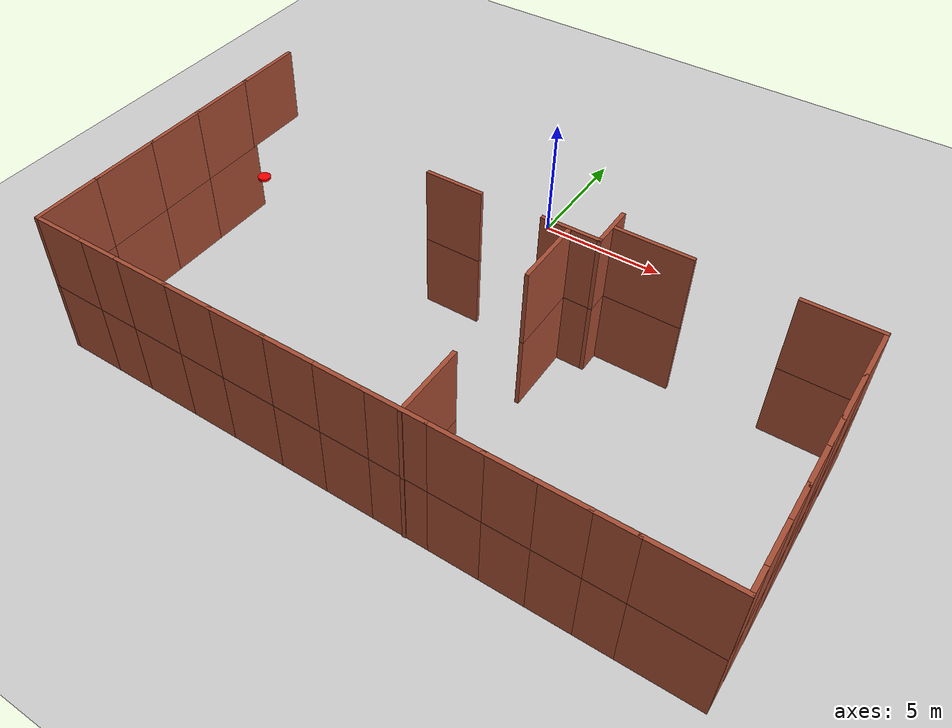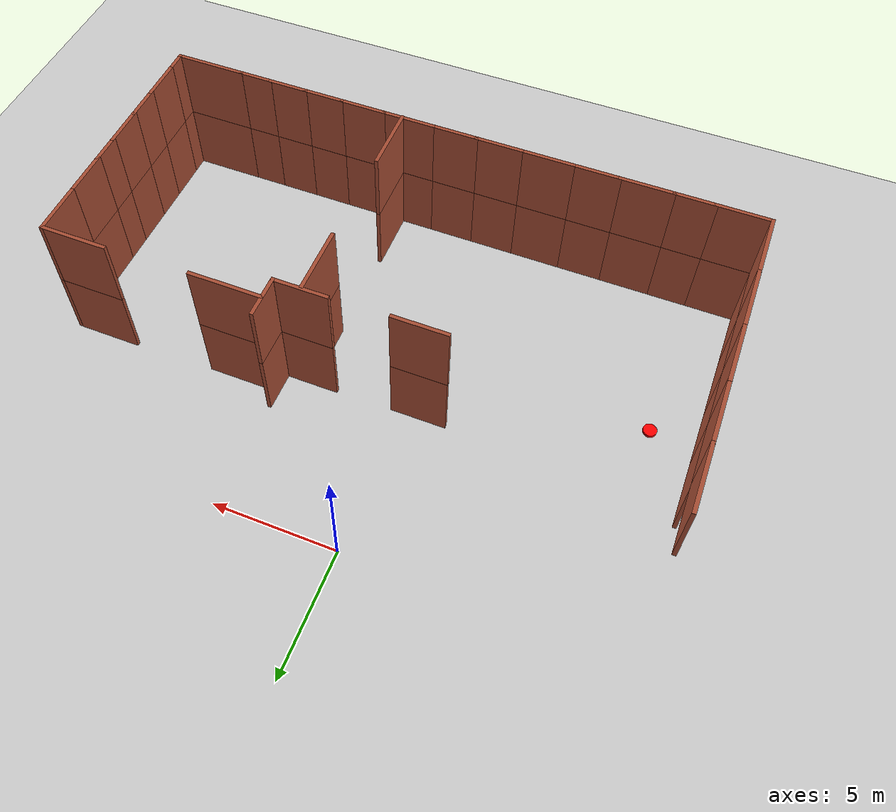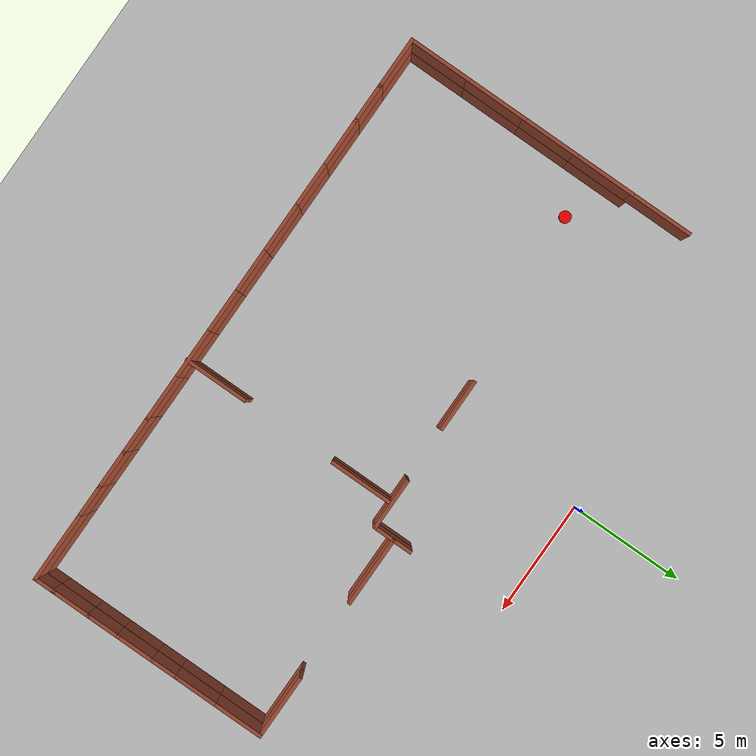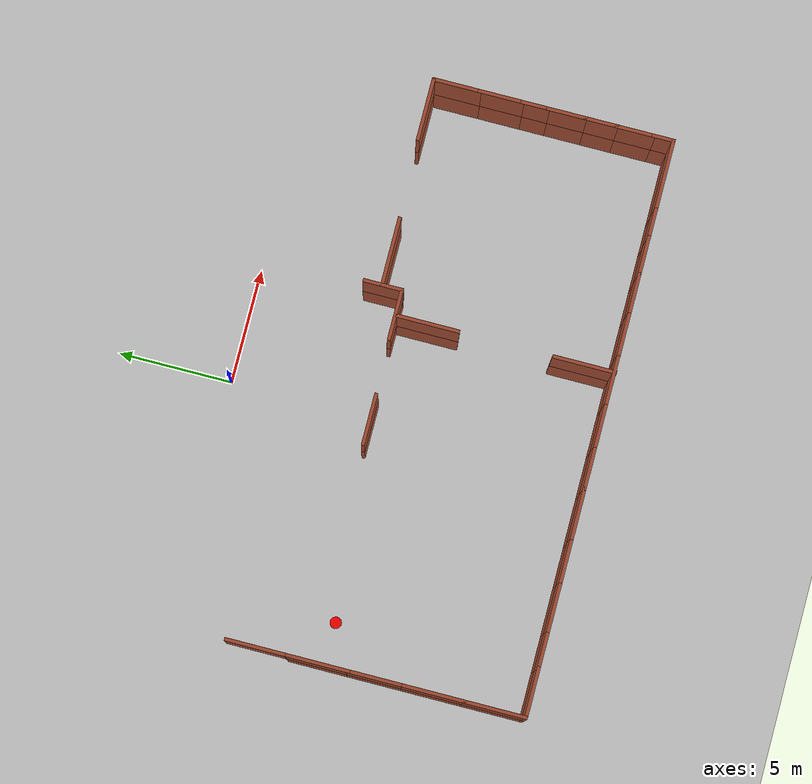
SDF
<sdf version="1.6">
 <world name="default">
  <model name="ground_plane">
   <static>1</static>
   <link name="link">
    <collision name="collision">
     <geometry><plane><normal>0 0 1</normal><size>100 100</size></plane></geometry>
     <surface><friction><ode><mu>100</mu><mu2>50</mu2></ode></friction></surface>
    </collision>
    <visual name="visual">
     <cast_shadows>0</cast_shadows>
     <geometry><plane><normal>0 0 1</normal><size>100 100</size></plane></geometry>
     <material>
      <script><uri>file://media/materials/scripts/gazebo.material</uri><name>Gazebo/Grey</name></script>
     </material>
    </visual>
   </link>
  </model>
  <model name="bigMaze1">
   <pose>1.50484 -3.1802 0 0 -0 0</pose>
   <link name="Wall_168">
    <collision name="Wall_168_Collision">
     <geometry><box><size>2.14299 0.15 3</size></box></geometry>
     <pose>0 0 1.5 0 -0 0</pose>
    </collision>
    <visual name="Wall_168_Visual">
     <pose>0 0 1.5 0 -0 0</pose>
     <geometry><box><size>2.14299 0.15 3</size></box></geometry>
     <material>
      <script><uri>file://media/materials/scripts/gazebo.material</uri><name>Gazebo/Bricks</name></script>
      <ambient>1 1 1 1</ambient>
     </material>
     <meta><layer>1</layer></meta>
    </visual>
    <pose>12.4 -3.08974 3 0 -0 -1.5708</pose>
   </link>
   <link name="Wall_169">
    <collision name="Wall_169_Collision">
     <geometry><box><size>2 0.15 3</size></box></geometry>
     <pose>0 0 1.5 0 -0 0</pose>
    </collision>
    <visual name="Wall_169_Visual">
     <pose>0 0 1.5 0 -0 0</pose>
     <geometry><box><size>2 0.15 3</size></box></geometry>
     <material>
      <script><uri>file://media/materials/scripts/gazebo.material</uri><name>Gazebo/Bricks</name></script>
      <ambient>1 1 1 1</ambient>
     </material>
     <meta><layer>1</layer></meta>
    </visual>
    <pose>12.4 -5.01124 3 0 -0 -1.5708</pose>
   </link>
   <link name="Wall_170">
    <collision name="Wall_170_Collision">
     <geometry><box><size>1.25 0.15 3</size></box></geometry>
     <pose>0 0 1.5 0 -0 0</pose>
    </collision>
    <visual name="Wall_170_Visual">
     <pose>0 0 1.5 0 -0 0</pose>
     <geometry><box><size>1.25 0.15 3</size></box></geometry>
     <material>
      <script><uri>file://media/materials/scripts/gazebo.material</uri><name>Gazebo/Bricks</name></script>
      <ambient>1 1 1 1</ambient>
     </material>
     <meta><layer>1</layer></meta>
    </visual>
    <pose>12.4 -6.48623 3 0 -0 -1.5708</pose>
   </link>
   <link name="Wall_171">
    <collision name="Wall_171_Collision">
     <geometry><box><size>1.75 0.15 3</size></box></geometry>
     <pose>0 0 1.5 0 -0 0</pose>
    </collision>
    <visual name="Wall_171_Visual">
     <pose>0 0 1.5 0 -0 0</pose>
     <geometry><box><size>1.75 0.15 3</size></box></geometry>
     <material>
      <script><uri>file://media/materials/scripts/gazebo.material</uri><name>Gazebo/Bricks</name></script>
      <ambient>1 1 1 1</ambient>
     </material>
     <meta><layer>1</layer></meta>
    </visual>
    <pose>12.4 -7.83624 3 0 -0 -1.5708</pose>
   </link>
   <link name="Wall_172">
    <collision name="Wall_172_Collision">
     <geometry><box><size>1.5 0.15 3</size></box></geometry>
     <pose>0 0 1.5 0 -0 0</pose>
    </collision>
    <visual name="Wall_172_Visual">
     <pose>0 0 1.5 0 -0 0</pose>
     <geometry><box><size>1.5 0.15 3</size></box></geometry>
     <material>
      <script><uri>file://media/materials/scripts/gazebo.material</uri><name>Gazebo/Bricks</name></script>
      <ambient>1 1 1 1</ambient>
     </material>
     <meta><layer>1</layer></meta>
    </visual>
    <pose>12.4 -9.31123 3 0 -0 -1.5708</pose>
   </link>
   <link name="Wall_173">
    <collision name="Wall_173_Collision">
     <geometry><box><size>1.75 0.15 3</size></box></geometry>
     <pose>0 0 1.5 0 -0 0</pose>
    </collision>
    <visual name="Wall_173_Visual">
     <pose>0 0 1.5 0 -0 0</pose>
     <geometry><box><size>1.75 0.15 3</size></box></geometry>
     <material>
      <script><uri>file://media/materials/scripts/gazebo.material</uri><name>Gazebo/Bricks</name></script>
      <ambient>1 1 1 1</ambient>
     </material>
     <meta><layer>1</layer></meta>
    </visual>
    <pose>12.4 -10.7862 3 0 -0 -1.5708</pose>
   </link>
   <link name="Wall_174">
    <collision name="Wall_174_Collision">
     <geometry><box><size>1 0.15 3</size></box></geometry>
     <pose>0 0 1.5 0 -0 0</pose>
    </collision>
    <visual name="Wall_174_Visual">
     <pose>0 0 1.5 0 -0 0</pose>
     <geometry><box><size>1 0.15 3</size></box></geometry>
     <material>
      <script><uri>file://media/materials/scripts/gazebo.material</uri><name>Gazebo/Bricks</name></script>
      <ambient>1 1 1 1</ambient>
     </material>
     <meta><layer>1</layer></meta>
    </visual>
    <pose>12.4 -12.0112 3 0 -0 -1.5708</pose>
   </link>
   <link name="Wall_175">
    <collision name="Wall_175_Collision">
     <geometry><box><size>3 0.15 3</size></box></geometry>
     <pose>0 0 1.5 0 -0 0</pose>
    </collision>
    <visual name="Wall_175_Visual">
     <pose>0 0 1.5 0 -0 0</pose>
     <geometry><box><size>3 0.15 3</size></box></geometry>
     <material>
      <script><uri>file://media/materials/scripts/gazebo.material</uri><name>Gazebo/Bricks</name></script>
      <ambient>1 1 1 1</ambient>
     </material>
     <meta><layer>1</layer></meta>
    </visual>
    <pose>10.975 -12.4362 3 0 -0 3.14159</pose>
   </link>
   <link name="Wall_176">
    <collision name="Wall_176_Collision">
     <geometry><box><size>1.5 0.15 3</size></box></geometry>
     <pose>0 0 1.5 0 -0 0</pose>
    </collision>
    <visual name="Wall_176_Visual">
     <pose>0 0 1.5 0 -0 0</pose>
     <geometry><box><size>1.5 0.15 3</size></box></geometry>
     <material>
      <script><uri>file://media/materials/scripts/gazebo.material</uri><name>Gazebo/Bricks</name></script>
      <ambient>1 1 1 1</ambient>
     </material>
     <meta><layer>1</layer></meta>
    </visual>
    <pose>8.875 -12.4362 3 0 -0 3.14159</pose>
   </link>
   <link name="Wall_177">
    <collision name="Wall_177_Collision">
     <geometry><box><size>1.75 0.15 3</size></box></geometry>
     <pose>0 0 1.5 0 -0 0</pose>
    </collision>
    <visual name="Wall_177_Visual">
     <pose>0 0 1.5 0 -0 0</pose>
     <geometry><box><size>1.75 0.15 3</size></box></geometry>
     <material>
      <script><uri>file://media/materials/scripts/gazebo.material</uri><name>Gazebo/Bricks</name></script>
      <ambient>1 1 1 1</ambient>
     </material>
     <meta><layer>1</layer></meta>
    </visual>
    <pose>7.4 -12.4362 3 0 -0 3.14159</pose>
   </link>
   <link name="Wall_178">
    <collision name="Wall_178_Collision">
     <geometry><box><size>1.75 0.15 3</size></box></geometry>
     <pose>0 0 1.5 0 -0 0</pose>
    </collision>
    <visual name="Wall_178_Visual">
     <pose>0 0 1.5 0 -0 0</pose>
     <geometry><box><size>1.75 0.15 3</size></box></geometry>
     <material>
      <script><uri>file://media/materials/scripts/gazebo.material</uri><name>Gazebo/Bricks</name></script>
      <ambient>1 1 1 1</ambient>
     </material>
     <meta><layer>1</layer></meta>
    </visual>
    <pose>5.8 -12.4362 3 0 -0 3.14159</pose>
   </link>
   <link name="Wall_179">
    <collision name="Wall_179_Collision">
     <geometry><box><size>2 0.15 3</size></box></geometry>
     <pose>0 0 1.5 0 -0 0</pose>
    </collision>
    <visual name="Wall_179_Visual">
     <pose>0 0 1.5 0 -0 0</pose>
     <geometry><box><size>2 0.15 3</size></box></geometry>
     <material>
      <script><uri>file://media/materials/scripts/gazebo.material</uri><name>Gazebo/Bricks</name></script>
      <ambient>1 1 1 1</ambient>
     </material>
     <meta><layer>1</layer></meta>
    </visual>
    <pose>4.075 -12.4362 3 0 -0 3.14159</pose>
   </link>
   <link name="Wall_180">
    <collision name="Wall_180_Collision">
     <geometry><box><size>2.25 0.15 3</size></box></geometry>
     <pose>0 0 1.5 0 -0 0</pose>
    </collision>
    <visual name="Wall_180_Visual">
     <pose>0 0 1.5 0 -0 0</pose>
     <geometry><box><size>2.25 0.15 3</size></box></geometry>
     <material>
      <script><uri>file://media/materials/scripts/gazebo.material</uri><name>Gazebo/Bricks</name></script>
      <ambient>1 1 1 1</ambient>
     </material>
     <meta><layer>1</layer></meta>
    </visual>
    <pose>2.1 -12.4362 3 0 -0 3.14159</pose>
   </link>
   <link name="Wall_181">
    <collision name="Wall_181_Collision">
     <geometry><box><size>2 0.15 3</size></box></geometry>
     <pose>0 0 1.5 0 -0 0</pose>
    </collision>
    <visual name="Wall_181_Visual">
     <pose>0 0 1.5 0 -0 0</pose>
     <geometry><box><size>2 0.15 3</size></box></geometry>
     <material>
      <script><uri>file://media/materials/scripts/gazebo.material</uri><name>Gazebo/Bricks</name></script>
      <ambient>1 1 1 1</ambient>
     </material>
     <meta><layer>1</layer></meta>
    </visual>
    <pose>0.125 -12.4362 3 0 -0 3.14159</pose>
   </link>
   <link name="Wall_182">
    <collision name="Wall_182_Collision">
     <geometry><box><size>2 0.15 3</size></box></geometry>
     <pose>0 0 1.5 0 -0 0</pose>
    </collision>
    <visual name="Wall_182_Visual">
     <pose>0 0 1.5 0 -0 0</pose>
     <geometry><box><size>2 0.15 3</size></box></geometry>
     <material>
      <script><uri>file://media/materials/scripts/gazebo.material</uri><name>Gazebo/Bricks</name></script>
      <ambient>1 1 1 1</ambient>
     </material>
     <meta><layer>1</layer></meta>
    </visual>
    <pose>-1.725 -12.4362 3 0 -0 3.14159</pose>
   </link>
   <link name="Wall_183">
    <collision name="Wall_183_Collision">
     <geometry><box><size>2.25 0.15 3</size></box></geometry>
     <pose>0 0 1.5 0 -0 0</pose>
    </collision>
    <visual name="Wall_183_Visual">
     <pose>0 0 1.5 0 -0 0</pose>
     <geometry><box><size>2.25 0.15 3</size></box></geometry>
     <material>
      <script><uri>file://media/materials/scripts/gazebo.material</uri><name>Gazebo/Bricks</name></script>
      <ambient>1 1 1 1</ambient>
     </material>
     <meta><layer>1</layer></meta>
    </visual>
    <pose>-3.7 -12.4362 3 0 -0 3.14159</pose>
   </link>
   <link name="Wall_184">
    <collision name="Wall_184_Collision">
     <geometry><box><size>2 0.15 3</size></box></geometry>
     <pose>0 0 1.5 0 -0 0</pose>
    </collision>
    <visual name="Wall_184_Visual">
     <pose>0 0 1.5 0 -0 0</pose>
     <geometry><box><size>2 0.15 3</size></box></geometry>
     <material>
      <script><uri>file://media/materials/scripts/gazebo.material</uri><name>Gazebo/Bricks</name></script>
      <ambient>1 1 1 1</ambient>
     </material>
     <meta><layer>1</layer></meta>
    </visual>
    <pose>-5.675 -12.4362 3 0 -0 3.14159</pose>
   </link>
   <link name="Wall_185">
    <collision name="Wall_185_Collision">
     <geometry><box><size>2.25 0.15 3</size></box></geometry>
     <pose>0 0 1.5 0 -0 0</pose>
    </collision>
    <visual name="Wall_185_Visual">
     <pose>0 0 1.5 0 -0 0</pose>
     <geometry><box><size>2.25 0.15 3</size></box></geometry>
     <material>
      <script><uri>file://media/materials/scripts/gazebo.material</uri><name>Gazebo/Bricks</name></script>
      <ambient>1 1 1 1</ambient>
     </material>
     <meta><layer>1</layer></meta>
    </visual>
    <pose>-7.65 -12.4362 3 0 -0 3.14159</pose>
   </link>
   <link name="Wall_186">
    <collision name="Wall_186_Collision">
     <geometry><box><size>1.75 0.15 3</size></box></geometry>
     <pose>0 0 1.5 0 -0 0</pose>
    </collision>
    <visual name="Wall_186_Visual">
     <pose>0 0 1.5 0 -0 0</pose>
     <geometry><box><size>1.75 0.15 3</size></box></geometry>
     <material>
      <script><uri>file://media/materials/scripts/gazebo.material</uri><name>Gazebo/Bricks</name></script>
      <ambient>1 1 1 1</ambient>
     </material>
     <meta><layer>1</layer></meta>
    </visual>
    <pose>-9.5 -12.4362 3 0 -0 3.14159</pose>
   </link>
   <link name="Wall_187">
    <collision name="Wall_187_Collision">
     <geometry><box><size>2.25 0.15 3</size></box></geometry>
     <pose>0 0 1.5 0 -0 0</pose>
    </collision>
    <visual name="Wall_187_Visual">
     <pose>0 0 1.5 0 -0 0</pose>
     <geometry><box><size>2.25 0.15 3</size></box></geometry>
     <material>
      <script><uri>file://media/materials/scripts/gazebo.material</uri><name>Gazebo/Bricks</name></script>
      <ambient>1 1 1 1</ambient>
     </material>
     <meta><layer>1</layer></meta>
    </visual>
    <pose>-11.35 -12.4362 3 0 -0 3.14159</pose>
   </link>
   <link name="Wall_188">
    <collision name="Wall_188_Collision">
     <geometry><box><size>2.75 0.15 3</size></box></geometry>
     <pose>0 0 1.5 0 -0 0</pose>
    </collision>
    <visual name="Wall_188_Visual">
     <pose>0 0 1.5 0 -0 0</pose>
     <geometry><box><size>2.75 0.15 3</size></box></geometry>
     <material>
      <script><uri>file://media/materials/scripts/gazebo.material</uri><name>Gazebo/Bricks</name></script>
      <ambient>1 1 1 1</ambient>
     </material>
     <meta><layer>1</layer></meta>
    </visual>
    <pose>-12.4 -11.1362 3 0 -0 1.5708</pose>
   </link>
   <link name="Wall_189">
    <collision name="Wall_189_Collision">
     <geometry><box><size>2.75 0.15 3</size></box></geometry>
     <pose>0 0 1.5 0 -0 0</pose>
    </collision>
    <visual name="Wall_189_Visual">
     <pose>0 0 1.5 0 -0 0</pose>
     <geometry><box><size>2.75 0.15 3</size></box></geometry>
     <material>
      <script><uri>file://media/materials/scripts/gazebo.material</uri><name>Gazebo/Bricks</name></script>
      <ambient>1 1 1 1</ambient>
     </material>
     <meta><layer>1</layer></meta>
    </visual>
    <pose>-12.4 -8.53623 3 0 -0 1.5708</pose>
   </link>
   <link name="Wall_190">
    <collision name="Wall_190_Collision">
     <geometry><box><size>2.5 0.15 3</size></box></geometry>
     <pose>0 0 1.5 0 -0 0</pose>
    </collision>
    <visual name="Wall_190_Visual">
     <pose>0 0 1.5 0 -0 0</pose>
     <geometry><box><size>2.5 0.15 3</size></box></geometry>
     <material>
      <script><uri>file://media/materials/scripts/gazebo.material</uri><name>Gazebo/Bricks</name></script>
      <ambient>1 1 1 1</ambient>
     </material>
     <meta><layer>1</layer></meta>
    </visual>
    <pose>-12.4 -6.06123 3 0 -0 1.5708</pose>
   </link>
   <link name="Wall_191">
    <collision name="Wall_191_Collision">
     <geometry><box><size>2.75 0.15 3</size></box></geometry>
     <pose>0 0 1.5 0 -0 0</pose>
    </collision>
    <visual name="Wall_191_Visual">
     <pose>0 0 1.5 0 -0 0</pose>
     <geometry><box><size>2.75 0.15 3</size></box></geometry>
     <material>
      <script><uri>file://media/materials/scripts/gazebo.material</uri><name>Gazebo/Bricks</name></script>
      <ambient>1 1 1 1</ambient>
     </material>
     <meta><layer>1</layer></meta>
    </visual>
    <pose>-12.4 -3.58623 3 0 -0 1.5708</pose>
   </link>
   <link name="Wall_192">
    <collision name="Wall_192_Collision">
     <geometry><box><size>2.75 0.15 3</size></box></geometry>
     <pose>0 0 1.5 0 -0 0</pose>
    </collision>
    <visual name="Wall_192_Visual">
     <pose>0 0 1.5 0 -0 0</pose>
     <geometry><box><size>2.75 0.15 3</size></box></geometry>
     <material>
      <script><uri>file://media/materials/scripts/gazebo.material</uri><name>Gazebo/Bricks</name></script>
      <ambient>1 1 1 1</ambient>
     </material>
     <meta><layer>1</layer></meta>
    </visual>
    <pose>-12.4 -0.986235 3 0 -0 1.5708</pose>
   </link>
   <link name="Wall_201">
    <collision name="Wall_201_Collision">
     <geometry><box><size>2.75 0.15 3</size></box></geometry>
     <pose>0 0 1.5 0 -0 0</pose>
    </collision>
    <visual name="Wall_201_Visual">
     <pose>0 0 1.5 0 -0 0</pose>
     <geometry><box><size>2.75 0.15 3</size></box></geometry>
     <material>
      <script><uri>file://media/materials/scripts/gazebo.material</uri><name>Gazebo/Bricks</name></script>
      <ambient>1 1 1 1</ambient>
     </material>
     <meta><layer>1</layer></meta>
    </visual>
    <pose>2.35978 -11.1638 3 0 -0 1.5708</pose>
   </link>
   <link name="Wall_202">
    <collision name="Wall_202_Collision">
     <geometry><box><size>2.75 0.15 3</size></box></geometry>
     <pose>0 0 1.5 0 -0 0</pose>
    </collision>
    <visual name="Wall_202_Visual">
     <pose>0 0 1.5 0 -0 0</pose>
     <geometry><box><size>2.75 0.15 3</size></box></geometry>
     <material>
      <script><uri>file://media/materials/scripts/gazebo.material</uri><name>Gazebo/Bricks</name></script>
      <ambient>1 1 1 1</ambient>
     </material>
     <meta><layer>1</layer></meta>
    </visual>
    <pose>11.1 -2.09325 3 0 -0 3.14159</pose>
   </link>
   <link name="Wall_206">
    <collision name="Wall_206_Collision">
     <geometry><box><size>2.25 0.15 3</size></box></geometry>
     <pose>0 0 1.5 0 -0 0</pose>
    </collision>
    <visual name="Wall_206_Visual">
     <pose>0 0 1.5 0 -0 0</pose>
     <geometry><box><size>2.25 0.15 3</size></box></geometry>
     <material>
      <script><uri>file://media/materials/scripts/gazebo.material</uri><name>Gazebo/Bricks</name></script>
      <ambient>1 1 1 1</ambient>
     </material>
     <meta><layer>1</layer></meta>
    </visual>
    <pose>-2.099 -3.10724 3 0 -0 0</pose>
   </link>
   <link name="Wall_207">
    <collision name="Wall_207_Collision">
     <geometry><box><size>2.25 0.15 3</size></box></geometry>
     <pose>0 0 1.5 0 -0 0</pose>
    </collision>
    <visual name="Wall_207_Visual">
     <pose>0 0 1.5 0 -0 0</pose>
     <geometry><box><size>2.25 0.15 3</size></box></geometry>
     <material>
      <script><uri>file://media/materials/scripts/gazebo.material</uri><name>Gazebo/Bricks</name></script>
      <ambient>1 1 1 1</ambient>
     </material>
     <meta><layer>1</layer></meta>
    </visual>
    <pose>2.417 -3.04123 3 0 -0 0</pose>
   </link>
   <link name="Wall_208">
    <collision name="Wall_208_Collision">
     <geometry><box><size>1.75 0.15 3</size></box></geometry>
     <pose>0 0 1.5 0 -0 0</pose>
    </collision>
    <visual name="Wall_208_Visual">
     <pose>0 0 1.5 0 -0 0</pose>
     <geometry><box><size>1.75 0.15 3</size></box></geometry>
     <material>
      <script><uri>file://media/materials/scripts/gazebo.material</uri><name>Gazebo/Bricks</name></script>
      <ambient>1 1 1 1</ambient>
     </material>
     <meta><layer>1</layer></meta>
    </visual>
    <pose>3.467 -2.24124 3 0 -0 1.5708</pose>
   </link>
   <link name="Wall_210">
    <collision name="Wall_210_Collision">
     <geometry><box><size>3 0.15 3</size></box></geometry>
     <pose>0 0 1.5 0 -0 0</pose>
    </collision>
    <visual name="Wall_210_Visual">
     <pose>0 0 1.5 0 -0 0</pose>
     <geometry><box><size>3 0.15 3</size></box></geometry>
     <material>
      <script><uri>file://media/materials/scripts/gazebo.material</uri><name>Gazebo/Bricks</name></script>
      <ambient>1 1 1 1</ambient>
     </material>
     <meta><layer>1</layer></meta>
    </visual>
    <pose>4.91098 -2.19274 3 0 -0 0</pose>
   </link>
   <link name="Wall_212">
    <collision name="Wall_212_Collision">
     <geometry><box><size>2.75 0.15 3</size></box></geometry>
     <pose>0 0 1.5 0 -0 0</pose>
    </collision>
    <visual name="Wall_212_Visual">
     <pose>0 0 1.5 0 -0 0</pose>
     <geometry><box><size>2.75 0.15 3</size></box></geometry>
     <material>
      <script><uri>file://media/materials/scripts/gazebo.material</uri><name>Gazebo/Bricks</name></script>
      <ambient>1 1 1 1</ambient>
     </material>
     <meta><layer>1</layer></meta>
    </visual>
    <pose>2.37727 -4.43722 3 0 -0 -1.5708</pose>
   </link>
   <link name="Wall_24">
    <collision name="Wall_24_Collision">
     <geometry><box><size>2.14299 0.15 3</size></box></geometry>
     <pose>0 0 1.5 0 -0 0</pose>
    </collision>
    <visual name="Wall_24_Visual">
     <pose>0 0 1.5 0 -0 0</pose>
     <geometry><box><size>2.14299 0.15 3</size></box></geometry>
     <material>
      <script><uri>file://media/materials/scripts/gazebo.material</uri><name>Gazebo/Bricks</name></script>
      <ambient>1 1 1 1</ambient>
     </material>
     <meta><layer>0</layer></meta>
    </visual>
    <pose>12.4 -3.08974 0 0 -0 -1.5708</pose>
   </link>
   <link name="Wall_25">
    <collision name="Wall_25_Collision">
     <geometry><box><size>2 0.15 3</size></box></geometry>
     <pose>0 0 1.5 0 -0 0</pose>
    </collision>
    <visual name="Wall_25_Visual">
     <pose>0 0 1.5 0 -0 0</pose>
     <geometry><box><size>2 0.15 3</size></box></geometry>
     <material>
      <script><uri>file://media/materials/scripts/gazebo.material</uri><name>Gazebo/Bricks</name></script>
      <ambient>1 1 1 1</ambient>
     </material>
     <meta><layer>0</layer></meta>
    </visual>
    <pose>12.4 -5.01124 0 0 -0 -1.5708</pose>
   </link>
   <link name="Wall_26">
    <collision name="Wall_26_Collision">
     <geometry><box><size>1.25 0.15 3</size></box></geometry>
     <pose>0 0 1.5 0 -0 0</pose>
    </collision>
    <visual name="Wall_26_Visual">
     <pose>0 0 1.5 0 -0 0</pose>
     <geometry><box><size>1.25 0.15 3</size></box></geometry>
     <material>
      <script><uri>file://media/materials/scripts/gazebo.material</uri><name>Gazebo/Bricks</name></script>
      <ambient>1 1 1 1</ambient>
     </material>
     <meta><layer>0</layer></meta>
    </visual>
    <pose>12.4 -6.48623 0 0 -0 -1.5708</pose>
   </link>
   <link name="Wall_27">
    <collision name="Wall_27_Collision">
     <geometry><box><size>1.75 0.15 3</size></box></geometry>
     <pose>0 0 1.5 0 -0 0</pose>
    </collision>
    <visual name="Wall_27_Visual">
     <pose>0 0 1.5 0 -0 0</pose>
     <geometry><box><size>1.75 0.15 3</size></box></geometry>
     <material>
      <script><uri>file://media/materials/scripts/gazebo.material</uri><name>Gazebo/Bricks</name></script>
      <ambient>1 1 1 1</ambient>
     </material>
     <meta><layer>0</layer></meta>
    </visual>
    <pose>12.4 -7.83624 0 0 -0 -1.5708</pose>
   </link>
   <link name="Wall_28">
    <collision name="Wall_28_Collision">
     <geometry><box><size>1.5 0.15 3</size></box></geometry>
     <pose>0 0 1.5 0 -0 0</pose>
    </collision>
    <visual name="Wall_28_Visual">
     <pose>0 0 1.5 0 -0 0</pose>
     <geometry><box><size>1.5 0.15 3</size></box></geometry>
     <material>
      <script><uri>file://media/materials/scripts/gazebo.material</uri><name>Gazebo/Bricks</name></script>
      <ambient>1 1 1 1</ambient>
     </material>
     <meta><layer>0</layer></meta>
    </visual>
    <pose>12.4 -9.31123 0 0 -0 -1.5708</pose>
   </link>
   <link name="Wall_29">
    <collision name="Wall_29_Collision">
     <geometry><box><size>1.75 0.15 3</size></box></geometry>
     <pose>0 0 1.5 0 -0 0</pose>
    </collision>
    <visual name="Wall_29_Visual">
     <pose>0 0 1.5 0 -0 0</pose>
     <geometry><box><size>1.75 0.15 3</size></box></geometry>
     <material>
      <script><uri>file://media/materials/scripts/gazebo.material</uri><name>Gazebo/Bricks</name></script>
      <ambient>1 1 1 1</ambient>
     </material>
     <meta><layer>0</layer></meta>
    </visual>
    <pose>12.4 -10.7862 0 0 -0 -1.5708</pose>
   </link>
   <link name="Wall_30">
    <collision name="Wall_30_Collision">
     <geometry><box><size>1 0.15 3</size></box></geometry>
     <pose>0 0 1.5 0 -0 0</pose>
    </collision>
    <visual name="Wall_30_Visual">
     <pose>0 0 1.5 0 -0 0</pose>
     <geometry><box><size>1 0.15 3</size></box></geometry>
     <material>
      <script><uri>file://media/materials/scripts/gazebo.material</uri><name>Gazebo/Bricks</name></script>
      <ambient>1 1 1 1</ambient>
     </material>
     <meta><layer>0</layer></meta>
    </visual>
    <pose>12.4 -12.0112 0 0 -0 -1.5708</pose>
   </link>
   <link name="Wall_31">
    <collision name="Wall_31_Collision">
     <geometry><box><size>3 0.15 3</size></box></geometry>
     <pose>0 0 1.5 0 -0 0</pose>
    </collision>
    <visual name="Wall_31_Visual">
     <pose>0 0 1.5 0 -0 0</pose>
     <geometry><box><size>3 0.15 3</size></box></geometry>
     <material>
      <script><uri>file://media/materials/scripts/gazebo.material</uri><name>Gazebo/Bricks</name></script>
      <ambient>1 1 1 1</ambient>
     </material>
     <meta><layer>0</layer></meta>
    </visual>
    <pose>10.975 -12.4362 0 0 -0 3.14159</pose>
   </link>
   <link name="Wall_32">
    <collision name="Wall_32_Collision">
     <geometry><box><size>1.5 0.15 3</size></box></geometry>
     <pose>0 0 1.5 0 -0 0</pose>
    </collision>
    <visual name="Wall_32_Visual">
     <pose>0 0 1.5 0 -0 0</pose>
     <geometry><box><size>1.5 0.15 3</size></box></geometry>
     <material>
      <script><uri>file://media/materials/scripts/gazebo.material</uri><name>Gazebo/Bricks</name></script>
      <ambient>1 1 1 1</ambient>
     </material>
     <meta><layer>0</layer></meta>
    </visual>
    <pose>8.875 -12.4362 0 0 -0 3.14159</pose>
   </link>
   <link name="Wall_33">
    <collision name="Wall_33_Collision">
     <geometry><box><size>1.75 0.15 3</size></box></geometry>
     <pose>0 0 1.5 0 -0 0</pose>
    </collision>
    <visual name="Wall_33_Visual">
     <pose>0 0 1.5 0 -0 0</pose>
     <geometry><box><size>1.75 0.15 3</size></box></geometry>
     <material>
      <script><uri>file://media/materials/scripts/gazebo.material</uri><name>Gazebo/Bricks</name></script>
      <ambient>1 1 1 1</ambient>
     </material>
     <meta><layer>0</layer></meta>
    </visual>
    <pose>7.4 -12.4362 0 0 -0 3.14159</pose>
   </link>
   <link name="Wall_34">
    <collision name="Wall_34_Collision">
     <geometry><box><size>1.75 0.15 3</size></box></geometry>
     <pose>0 0 1.5 0 -0 0</pose>
    </collision>
    <visual name="Wall_34_Visual">
     <pose>0 0 1.5 0 -0 0</pose>
     <geometry><box><size>1.75 0.15 3</size></box></geometry>
     <material>
      <script><uri>file://media/materials/scripts/gazebo.material</uri><name>Gazebo/Bricks</name></script>
      <ambient>1 1 1 1</ambient>
     </material>
     <meta><layer>0</layer></meta>
    </visual>
    <pose>5.8 -12.4362 0 0 -0 3.14159</pose>
   </link>
   <link name="Wall_35">
    <collision name="Wall_35_Collision">
     <geometry><box><size>2 0.15 3</size></box></geometry>
     <pose>0 0 1.5 0 -0 0</pose>
    </collision>
    <visual name="Wall_35_Visual">
     <pose>0 0 1.5 0 -0 0</pose>
     <geometry><box><size>2 0.15 3</size></box></geometry>
     <material>
      <script><uri>file://media/materials/scripts/gazebo.material</uri><name>Gazebo/Bricks</name></script>
      <ambient>1 1 1 1</ambient>
     </material>
     <meta><layer>0</layer></meta>
    </visual>
    <pose>4.075 -12.4362 0 0 -0 3.14159</pose>
   </link>
   <link name="Wall_38">
    <collision name="Wall_38_Collision">
     <geometry><box><size>2.25 0.15 3</size></box></geometry>
     <pose>0 0 1.5 0 -0 0</pose>
    </collision>
    <visual name="Wall_38_Visual">
     <pose>0 0 1.5 0 -0 0</pose>
     <geometry><box><size>2.25 0.15 3</size></box></geometry>
     <material>
      <script><uri>file://media/materials/scripts/gazebo.material</uri><name>Gazebo/Bricks</name></script>
      <ambient>1 1 1 1</ambient>
     </material>
     <meta><layer>0</layer></meta>
    </visual>
    <pose>2.1 -12.4362 0 0 -0 3.14159</pose>
   </link>
   <link name="Wall_39">
    <collision name="Wall_39_Collision">
     <geometry><box><size>2 0.15 3</size></box></geometry>
     <pose>0 0 1.5 0 -0 0</pose>
    </collision>
    <visual name="Wall_39_Visual">
     <pose>0 0 1.5 0 -0 0</pose>
     <geometry><box><size>2 0.15 3</size></box></geometry>
     <material>
      <script><uri>file://media/materials/scripts/gazebo.material</uri><name>Gazebo/Bricks</name></script>
      <ambient>1 1 1 1</ambient>
     </material>
     <meta><layer>0</layer></meta>
    </visual>
    <pose>0.125 -12.4362 0 0 -0 3.14159</pose>
   </link>
   <link name="Wall_40">
    <collision name="Wall_40_Collision">
     <geometry><box><size>2 0.15 3</size></box></geometry>
     <pose>0 0 1.5 0 -0 0</pose>
    </collision>
    <visual name="Wall_40_Visual">
     <pose>0 0 1.5 0 -0 0</pose>
     <geometry><box><size>2 0.15 3</size></box></geometry>
     <material>
      <script><uri>file://media/materials/scripts/gazebo.material</uri><name>Gazebo/Bricks</name></script>
      <ambient>1 1 1 1</ambient>
     </material>
     <meta><layer>0</layer></meta>
    </visual>
    <pose>-1.725 -12.4362 0 0 -0 3.14159</pose>
   </link>
   <link name="Wall_41">
    <collision name="Wall_41_Collision">
     <geometry><box><size>2.25 0.15 3</size></box></geometry>
     <pose>0 0 1.5 0 -0 0</pose>
    </collision>
    <visual name="Wall_41_Visual">
     <pose>0 0 1.5 0 -0 0</pose>
     <geometry><box><size>2.25 0.15 3</size></box></geometry>
     <material>
      <script><uri>file://media/materials/scripts/gazebo.material</uri><name>Gazebo/Bricks</name></script>
      <ambient>1 1 1 1</ambient>
     </material>
     <meta><layer>0</layer></meta>
    </visual>
    <pose>-3.7 -12.4362 0 0 -0 3.14159</pose>
   </link>
   <link name="Wall_42">
    <collision name="Wall_42_Collision">
     <geometry><box><size>2 0.15 3</size></box></geometry>
     <pose>0 0 1.5 0 -0 0</pose>
    </collision>
    <visual name="Wall_42_Visual">
     <pose>0 0 1.5 0 -0 0</pose>
     <geometry><box><size>2 0.15 3</size></box></geometry>
     <material>
      <script><uri>file://media/materials/scripts/gazebo.material</uri><name>Gazebo/Bricks</name></script>
      <ambient>1 1 1 1</ambient>
     </material>
     <meta><layer>0</layer></meta>
    </visual>
    <pose>-5.675 -12.4362 0 0 -0 3.14159</pose>
   </link>
   <link name="Wall_43">
    <collision name="Wall_43_Collision">
     <geometry><box><size>2.25 0.15 3</size></box></geometry>
     <pose>0 0 1.5 0 -0 0</pose>
    </collision>
    <visual name="Wall_43_Visual">
     <pose>0 0 1.5 0 -0 0</pose>
     <geometry><box><size>2.25 0.15 3</size></box></geometry>
     <material>
      <script><uri>file://media/materials/scripts/gazebo.material</uri><name>Gazebo/Bricks</name></script>
      <ambient>1 1 1 1</ambient>
     </material>
     <meta><layer>0</layer></meta>
    </visual>
    <pose>-7.65 -12.4362 0 0 -0 3.14159</pose>
   </link>
   <link name="Wall_44">
    <collision name="Wall_44_Collision">
     <geometry><box><size>1.75 0.15 3</size></box></geometry>
     <pose>0 0 1.5 0 -0 0</pose>
    </collision>
    <visual name="Wall_44_Visual">
     <pose>0 0 1.5 0 -0 0</pose>
     <geometry><box><size>1.75 0.15 3</size></box></geometry>
     <material>
      <script><uri>file://media/materials/scripts/gazebo.material</uri><name>Gazebo/Bricks</name></script>
      <ambient>1 1 1 1</ambient>
     </material>
     <meta><layer>0</layer></meta>
    </visual>
    <pose>-9.5 -12.4362 0 0 -0 3.14159</pose>
   </link>
   <link name="Wall_45">
    <collision name="Wall_45_Collision">
     <geometry><box><size>2.25 0.15 3</size></box></geometry>
     <pose>0 0 1.5 0 -0 0</pose>
    </collision>
    <visual name="Wall_45_Visual">
     <pose>0 0 1.5 0 -0 0</pose>
     <geometry><box><size>2.25 0.15 3</size></box></geometry>
     <material>
      <script><uri>file://media/materials/scripts/gazebo.material</uri><name>Gazebo/Bricks</name></script>
      <ambient>1 1 1 1</ambient>
     </material>
     <meta><layer>0</layer></meta>
    </visual>
    <pose>-11.35 -12.4362 0 0 -0 3.14159</pose>
   </link>
   <link name="Wall_46">
    <collision name="Wall_46_Collision">
     <geometry><box><size>2.75 0.15 3</size></box></geometry>
     <pose>0 0 1.5 0 -0 0</pose>
    </collision>
    <visual name="Wall_46_Visual">
     <pose>0 0 1.5 0 -0 0</pose>
     <geometry><box><size>2.75 0.15 3</size></box></geometry>
     <material>
      <script><uri>file://media/materials/scripts/gazebo.material</uri><name>Gazebo/Bricks</name></script>
      <ambient>1 1 1 1</ambient>
     </material>
     <meta><layer>0</layer></meta>
    </visual>
    <pose>-12.4 -11.1362 0 0 -0 1.5708</pose>
   </link>
   <link name="Wall_47">
    <collision name="Wall_47_Collision">
     <geometry><box><size>2.75 0.15 3</size></box></geometry>
     <pose>0 0 1.5 0 -0 0</pose>
    </collision>
    <visual name="Wall_47_Visual">
     <pose>0 0 1.5 0 -0 0</pose>
     <geometry><box><size>2.75 0.15 3</size></box></geometry>
     <material>
      <script><uri>file://media/materials/scripts/gazebo.material</uri><name>Gazebo/Bricks</name></script>
      <ambient>1 1 1 1</ambient>
     </material>
     <meta><layer>0</layer></meta>
    </visual>
    <pose>-12.4 -8.53623 0 0 -0 1.5708</pose>
   </link>
   <link name="Wall_48">
    <collision name="Wall_48_Collision">
     <geometry><box><size>2.5 0.15 3</size></box></geometry>
     <pose>0 0 1.5 0 -0 0</pose>
    </collision>
    <visual name="Wall_48_Visual">
     <pose>0 0 1.5 0 -0 0</pose>
     <geometry><box><size>2.5 0.15 3</size></box></geometry>
     <material>
      <script><uri>file://media/materials/scripts/gazebo.material</uri><name>Gazebo/Bricks</name></script>
      <ambient>1 1 1 1</ambient>
     </material>
     <meta><layer>0</layer></meta>
    </visual>
    <pose>-12.4 -6.06123 0 0 -0 1.5708</pose>
   </link>
   <link name="Wall_49">
    <collision name="Wall_49_Collision">
     <geometry><box><size>2.75 0.15 3</size></box></geometry>
     <pose>0 0 1.5 0 -0 0</pose>
    </collision>
    <visual name="Wall_49_Visual">
     <pose>0 0 1.5 0 -0 0</pose>
     <geometry><box><size>2.75 0.15 3</size></box></geometry>
     <material>
      <script><uri>file://media/materials/scripts/gazebo.material</uri><name>Gazebo/Bricks</name></script>
      <ambient>1 1 1 1</ambient>
     </material>
     <meta><layer>0</layer></meta>
    </visual>
    <pose>-12.4 -3.58623 0 0 -0 1.5708</pose>
   </link>
   <link name="Wall_62">
    <collision name="Wall_62_Collision">
     <geometry><box><size>2.75 0.15 3</size></box></geometry>
     <pose>0 0 1.5 0 -0 0</pose>
    </collision>
    <visual name="Wall_62_Visual">
     <pose>0 0 1.5 0 -0 0</pose>
     <geometry><box><size>2.75 0.15 3</size></box></geometry>
     <material>
      <script><uri>file://media/materials/scripts/gazebo.material</uri><name>Gazebo/Bricks</name></script>
      <ambient>1 1 1 1</ambient>
     </material>
     <meta><layer>0</layer></meta>
    </visual>
    <pose>2.35978 -11.1638 0 0 -0 1.5708</pose>
   </link>
   <link name="Wall_64">
    <collision name="Wall_64_Collision">
     <geometry><box><size>2.75 0.15 3</size></box></geometry>
     <pose>0 0 1.5 0 -0 0</pose>
    </collision>
    <visual name="Wall_64_Visual">
     <pose>0 0 1.5 0 -0 0</pose>
     <geometry><box><size>2.75 0.15 3</size></box></geometry>
     <material>
      <script><uri>file://media/materials/scripts/gazebo.material</uri><name>Gazebo/Bricks</name></script>
      <ambient>1 1 1 1</ambient>
     </material>
     <meta><layer>0</layer></meta>
    </visual>
    <pose>11.1 -2.09325 0 0 -0 3.14159</pose>
   </link>
   <link name="Wall_71">
    <collision name="Wall_71_Collision">
     <geometry><box><size>2.25 0.15 3</size></box></geometry>
     <pose>0 0 1.5 0 -0 0</pose>
    </collision>
    <visual name="Wall_71_Visual">
     <pose>0 0 1.5 0 -0 0</pose>
     <geometry><box><size>2.25 0.15 3</size></box></geometry>
     <material>
      <script><uri>file://media/materials/scripts/gazebo.material</uri><name>Gazebo/Bricks</name></script>
      <ambient>1 1 1 1</ambient>
     </material>
     <meta><layer>0</layer></meta>
    </visual>
    <pose>-2.099 -3.10724 0 0 -0 0</pose>
   </link>
   <link name="Wall_74">
    <collision name="Wall_74_Collision">
     <geometry><box><size>2.25 0.15 3</size></box></geometry>
     <pose>0 0 1.5 0 -0 0</pose>
    </collision>
    <visual name="Wall_74_Visual">
     <pose>0 0 1.5 0 -0 0</pose>
     <geometry><box><size>2.25 0.15 3</size></box></geometry>
     <material>
      <script><uri>file://media/materials/scripts/gazebo.material</uri><name>Gazebo/Bricks</name></script>
      <ambient>1 1 1 1</ambient>
     </material>
     <meta><layer>0</layer></meta>
    </visual>
    <pose>2.417 -3.04123 0 0 -0 0</pose>
   </link>
   <link name="Wall_75">
    <collision name="Wall_75_Collision">
     <geometry><box><size>1.75 0.15 3</size></box></geometry>
     <pose>0 0 1.5 0 -0 0</pose>
    </collision>
    <visual name="Wall_75_Visual">
     <pose>0 0 1.5 0 -0 0</pose>
     <geometry><box><size>1.75 0.15 3</size></box></geometry>
     <material>
      <script><uri>file://media/materials/scripts/gazebo.material</uri><name>Gazebo/Bricks</name></script>
      <ambient>1 1 1 1</ambient>
     </material>
     <meta><layer>0</layer></meta>
    </visual>
    <pose>3.467 -2.24124 0 0 -0 1.5708</pose>
   </link>
   <link name="Wall_79">
    <collision name="Wall_79_Collision">
     <geometry><box><size>3 0.15 3</size></box></geometry>
     <pose>0 0 1.5 0 -0 0</pose>
    </collision>
    <visual name="Wall_79_Visual">
     <pose>0 0 1.5 0 -0 0</pose>
     <geometry><box><size>3 0.15 3</size></box></geometry>
     <material>
      <script><uri>file://media/materials/scripts/gazebo.material</uri><name>Gazebo/Bricks</name></script>
      <ambient>1 1 1 1</ambient>
     </material>
     <meta><layer>0</layer></meta>
    </visual>
    <pose>4.91098 -2.19274 0 0 -0 0</pose>
   </link>
   <link name="Wall_83">
    <collision name="Wall_83_Collision">
     <geometry><box><size>2.75 0.15 3</size></box></geometry>
     <pose>0 0 1.5 0 -0 0</pose>
    </collision>
    <visual name="Wall_83_Visual">
     <pose>0 0 1.5 0 -0 0</pose>
     <geometry><box><size>2.75 0.15 3</size></box></geometry>
     <material>
      <script><uri>file://media/materials/scripts/gazebo.material</uri><name>Gazebo/Bricks</name></script>
      <ambient>1 1 1 1</ambient>
     </material>
     <meta><layer>0</layer></meta>
    </visual>
    <pose>2.37727 -4.43722 0 0 -0 -1.5708</pose>
   </link>
   <static>1</static>
  </model>
  <model name="cylinder1">
   <link name="link">
    <inertial>
     <mass>1</mass>
     <inertia><ixx>0.145833</ixx><ixy>0</ixy><ixz>0</ixz><iyy>0.145833</iyy><iyz>0</iyz><izz>0.125</izz></inertia>
     <pose>0 0 -0.5 0 -0 0</pose>
    </inertial>
    <visual name="visual">
     <geometry><cylinder><radius>0.25</radius><length>0.1</length></cylinder></geometry>
     <material>
      <script><name>Gazebo/Grey</name><uri>file://media/materials/scripts/gazebo.material</uri></script>
      <shader type="pixel"><normal_map>__default__</normal_map></shader>
      <ambient>0.937 0.161 0.161 1</ambient>
      <diffuse>1 0 0 0</diffuse>
      <specular>0.8 0 0 1</specular>
      <emissive>0.937 0.161 0.161 0</emissive>
     </material>
     <pose>0 0 -0.5 0 -0 0</pose>
    </visual>
    <collision name="collision">
     <pose>0 0 -0.5 0 -0 0</pose>
     <geometry><cylinder><radius>0.25</radius><length>0.1</length></cylinder></geometry>
     <surface>
      <friction>
       <ode><mu>1</mu><mu2>1</mu2><fdir1>0 0 0</fdir1><slip1>0</slip1><slip2>0</slip2></ode>
       <torsional>
        <coefficient>1</coefficient>
        <patch_radius>0</patch_radius>
        <surface_radius>0</surface_radius>
        <use_patch_radius>1</use_patch_radius>
        <ode><slip>0</slip></ode>
       </torsional>
      </friction>
      <bounce><restitution_coefficient>0</restitution_coefficient><threshold>1e+06</threshold></bounce>
      <contact>
       <collide_without_contact>0</collide_without_contact>
       <collide_without_contact_bitmask>1</collide_without_contact_bitmask>
       <collide_bitmask>1</collide_bitmask>
       <ode>
        <soft_cfm>0</soft_cfm>
        <soft_erp>0.2</soft_erp>
        <kp>1e+13</kp>
        <kd>1</kd>
        <max_vel>0.01</max_vel>
        <min_depth>0</min_depth>
       </ode>
       <bullet>
        <split_impulse>1</split_impulse>
        <split_impulse_penetration_threshold>-0.01</split_impulse_penetration_threshold>
        <soft_cfm>0</soft_cfm>
        <soft_erp>0.2</soft_erp>
        <kp>1e+13</kp>
        <kd>1</kd>
       </bullet>
      </contact>
     </surface>
    </collision>
   </link>
   <static>0</static>
   <pose>-8.98485 -7 3.64999 0 -0 1e-06</pose>
  </model>
 </world>
</sdf>
